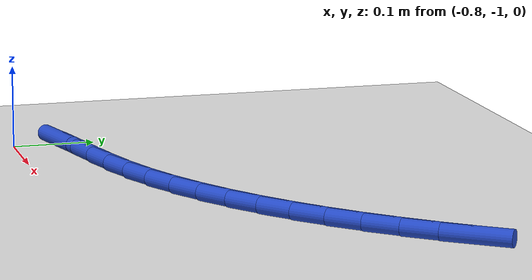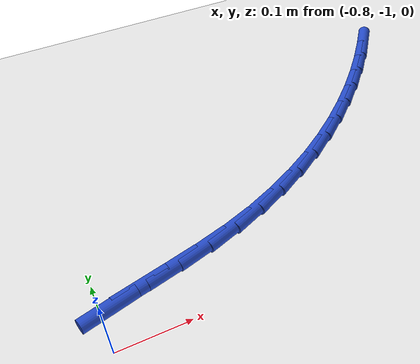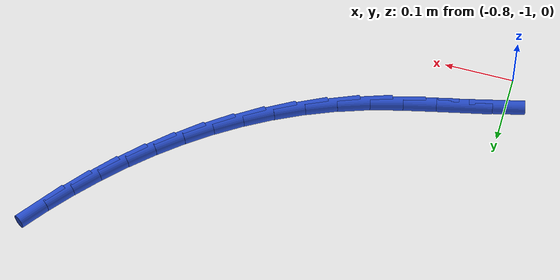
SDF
<sdf version="1.6">
 <world name="default">
  <model name="ground_plane">
   <static>1</static>
   <link name="link">
    <collision name="collision">
     <geometry><plane><normal>0 0 1</normal><size>100 100</size></plane></geometry>
     <surface><friction><ode><mu>100</mu><mu2>50</mu2></ode></friction></surface>
    </collision>
    <visual name="visual">
     <cast_shadows>0</cast_shadows>
     <geometry><plane><normal>0 0 1</normal><size>100 100</size></plane></geometry>
     <material>
      <script><uri>file://media/materials/scripts/gazebo.material</uri><name>Gazebo/WhiteGlow</name></script>
     </material>
    </visual>
   </link>
  </model>
  <model name="line">
   <link name="link_160">
    <pose>-0.7886222993205962 -0.945761213650281 0.01 0 1.57 0.24099807007605764</pose>
    <collision name="collision">
     <geometry><cylinder><radius>0.01</radius><length>0.08</length></cylinder></geometry>
    </collision>
    <visual name="visual">
     <material>
      <script><name>Gazebo/Blue</name><uri>file://media/materials/scripts/gazebo.material</uri></script>
     </material>
     <geometry><cylinder><radius>0.01</radius><length>0.08</length></cylinder></geometry>
    </visual>
   </link>
   <link name="link_161">
    <pose>-0.743256585248128 -0.9346114642444904 0.01 0 1.57 0.22204493585227184</pose>
    <collision name="collision">
     <geometry><cylinder><radius>0.01</radius><length>0.08</length></cylinder></geometry>
    </collision>
    <visual name="visual">
     <material>
      <script><name>Gazebo/Blue</name><uri>file://media/materials/scripts/gazebo.material</uri></script>
     </material>
     <geometry><cylinder><radius>0.01</radius><length>0.08</length></cylinder></geometry>
    </visual>
   </link>
   <link name="link_162">
    <pose>-0.6969643387873243 -0.9241601748143571 0.01 0 1.57 0.23225522937715004</pose>
    <collision name="collision">
     <geometry><cylinder><radius>0.01</radius><length>0.08</length></cylinder></geometry>
    </collision>
    <visual name="visual">
     <material>
      <script><name>Gazebo/Blue</name><uri>file://media/materials/scripts/gazebo.material</uri></script>
     </material>
     <geometry><cylinder><radius>0.01</radius><length>0.08</length></cylinder></geometry>
    </visual>
   </link>
   <link name="link_163">
    <pose>-0.6506622354175183 -0.9132086396716661 0.01 0 1.57 0.2717675774940523</pose>
    <collision name="collision">
     <geometry><cylinder><radius>0.01</radius><length>0.08</length></cylinder></geometry>
    </collision>
    <visual name="visual">
     <material>
      <script><name>Gazebo/Blue</name><uri>file://media/materials/scripts/gazebo.material</uri></script>
     </material>
     <geometry><cylinder><radius>0.01</radius><length>0.08</length></cylinder></geometry>
    </visual>
   </link>
   <link name="link_164">
    <pose>-0.6052666337084095 -0.9005586089449048 0.01 0 1.57 0.3346127965689212</pose>
    <collision name="collision">
     <geometry><cylinder><radius>0.01</radius><length>0.08</length></cylinder></geometry>
    </collision>
    <visual name="visual">
     <material>
      <script><name>Gazebo/Blue</name><uri>file://media/materials/scripts/gazebo.material</uri></script>
     </material>
     <geometry><cylinder><radius>0.01</radius><length>0.08</length></cylinder></geometry>
    </visual>
   </link>
   <link name="link_165">
    <pose>-0.5614715532563964 -0.8853316268200738 0.01 0 1.57 0.3999619054855549</pose>
    <collision name="collision">
     <geometry><cylinder><radius>0.01</radius><length>0.08</length></cylinder></geometry>
    </collision>
    <visual name="visual">
     <material>
      <script><name>Gazebo/Blue</name><uri>file://media/materials/scripts/gazebo.material</uri></script>
     </material>
     <geometry><cylinder><radius>0.01</radius><length>0.08</length></cylinder></geometry>
    </visual>
   </link>
   <link name="link_166">
    <pose>-0.5193594790922278 -0.8675288184093382 0.01 0 1.57 0.46369105970710284</pose>
    <collision name="collision">
     <geometry><cylinder><radius>0.01</radius><length>0.08</length></cylinder></geometry>
    </collision>
    <visual name="visual">
     <material>
      <script><name>Gazebo/Blue</name><uri>file://media/materials/scripts/gazebo.material</uri></script>
     </material>
     <geometry><cylinder><radius>0.01</radius><length>0.08</length></cylinder></geometry>
    </visual>
   </link>
   <link name="link_167">
    <pose>-0.47890867127640346 -0.8473012174334802 0.01 0 1.57 0.5254067201001227</pose>
    <collision name="collision">
     <geometry><cylinder><radius>0.01</radius><length>0.08</length></cylinder></geometry>
    </collision>
    <visual name="visual">
     <material>
      <script><name>Gazebo/Blue</name><uri>file://media/materials/scripts/gazebo.material</uri></script>
     </material>
     <geometry><cylinder><radius>0.01</radius><length>0.08</length></cylinder></geometry>
    </visual>
   </link>
   <link name="link_168">
    <pose>-0.4400973898694261 -0.8247998576132837 0.01 0 1.57 0.5848020962285192</pose>
    <collision name="collision">
     <geometry><cylinder><radius>0.01</radius><length>0.08</length></cylinder></geometry>
    </collision>
    <visual name="visual">
     <material>
      <script><name>Gazebo/Blue</name><uri>file://media/materials/scripts/gazebo.material</uri></script>
     </material>
     <geometry><cylinder><radius>0.01</radius><length>0.08</length></cylinder></geometry>
    </visual>
   </link>
   <link name="link_169">
    <pose>-0.40290389493179746 -0.8001757726695319 0.01 0 1.57 0.6416591577881623</pose>
    <collision name="collision">
     <geometry><cylinder><radius>0.01</radius><length>0.08</length></cylinder></geometry>
    </collision>
    <visual name="visual">
     <material>
      <script><name>Gazebo/Blue</name><uri>file://media/materials/scripts/gazebo.material</uri></script>
     </material>
     <geometry><cylinder><radius>0.01</radius><length>0.08</length></cylinder></geometry>
    </visual>
   </link>
   <link name="link_170">
    <pose>-0.36730644652401906 -0.7735799963230079 0.01 0 1.57 0.695844202482413</pose>
    <collision name="collision">
     <geometry><cylinder><radius>0.01</radius><length>0.08</length></cylinder></geometry>
    </collision>
    <visual name="visual">
     <material>
      <script><name>Gazebo/Blue</name><uri>file://media/materials/scripts/gazebo.material</uri></script>
     </material>
     <geometry><cylinder><radius>0.01</radius><length>0.08</length></cylinder></geometry>
    </visual>
   </link>
   <link name="link_171">
    <pose>-0.3332833047065927 -0.7451635622944952 0.01 0 1.57 0.747298873336443</pose>
    <collision name="collision">
     <geometry><cylinder><radius>0.01</radius><length>0.08</length></cylinder></geometry>
    </collision>
    <visual name="visual">
     <material>
      <script><name>Gazebo/Blue</name><uri>file://media/materials/scripts/gazebo.material</uri></script>
     </material>
     <geometry><cylinder><radius>0.01</radius><length>0.08</length></cylinder></geometry>
    </visual>
   </link>
   <link name="link_172">
    <pose>-0.30081272954002075 -0.7150775043047773 0.01 0 1.57 0.7960286077538786</pose>
    <collision name="collision">
     <geometry><cylinder><radius>0.01</radius><length>0.08</length></cylinder></geometry>
    </collision>
    <visual name="visual">
     <material>
      <script><name>Gazebo/Blue</name><uri>file://media/materials/scripts/gazebo.material</uri></script>
     </material>
     <geometry><cylinder><radius>0.01</radius><length>0.08</length></cylinder></geometry>
    </visual>
   </link>
   <link name="link_173">
    <pose>-0.2698729810848034 -0.6834728560746361 0.01 0 1.57 0.8420902400959674</pose>
    <collision name="collision">
     <geometry><cylinder><radius>0.01</radius><length>0.08</length></cylinder></geometry>
    </collision>
    <visual name="visual">
     <material>
      <script><name>Gazebo/Blue</name><uri>file://media/materials/scripts/gazebo.material</uri></script>
     </material>
     <geometry><cylinder><radius>0.01</radius><length>0.08</length></cylinder></geometry>
    </visual>
   </link>
   <link name="link_174">
    <pose>-0.2404423194014432 -0.650500651324856 0.01 0 1.57 0.8855800441900837</pose>
    <collision name="collision">
     <geometry><cylinder><radius>0.01</radius><length>0.08</length></cylinder></geometry>
    </collision>
    <visual name="visual">
     <material>
      <script><name>Gazebo/Blue</name><uri>file://media/materials/scripts/gazebo.material</uri></script>
     </material>
     <geometry><cylinder><radius>0.01</radius><length>0.08</length></cylinder></geometry>
    </visual>
   </link>
   <link name="link_175">
    <pose>-0.2124990045504417 -0.6163119237762199 0.01 0 1.57 0.9271441868329146</pose>
    <collision name="collision">
     <geometry><cylinder><radius>0.01</radius><length>0.08</length></cylinder></geometry>
    </collision>
    <visual name="visual">
     <material>
      <script><name>Gazebo/Blue</name><uri>file://media/materials/scripts/gazebo.material</uri></script>
     </material>
     <geometry><cylinder><radius>0.01</radius><length>0.08</length></cylinder></geometry>
    </visual>
   </link>
  </model>
 </world>
</sdf>
